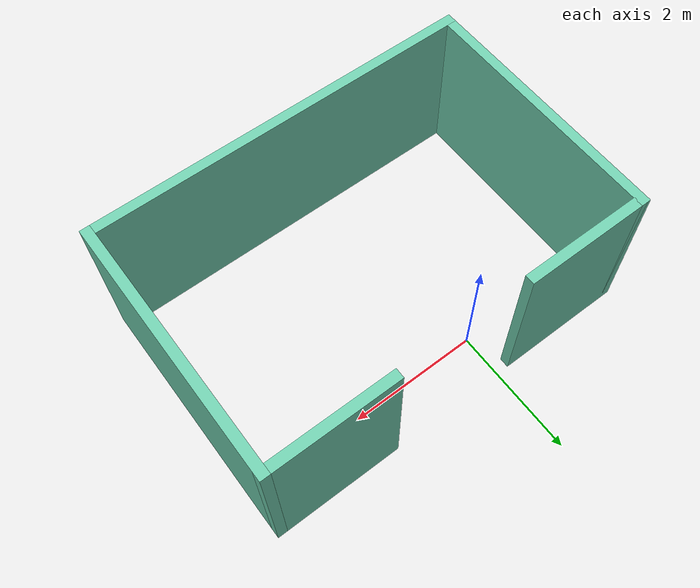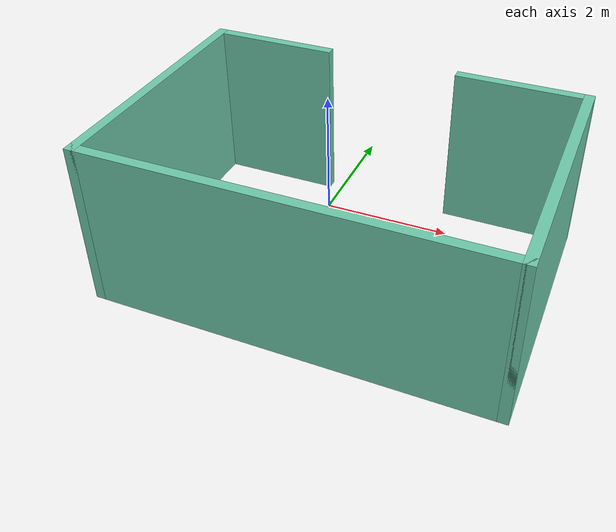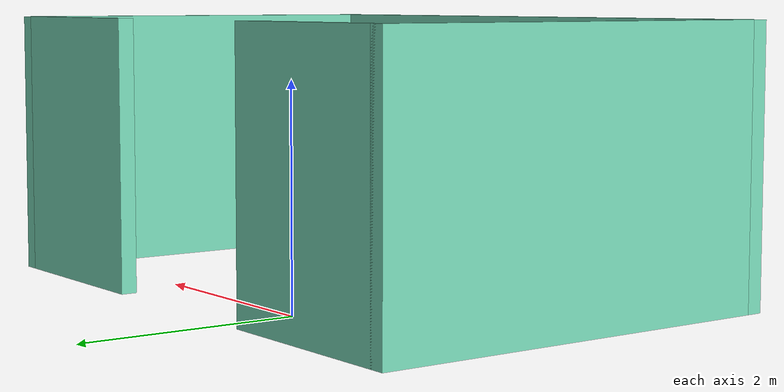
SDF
<?xml version='1.0'?>
<sdf version='1.7'>
  <model name='hospital_stroage_room'>
    <pose>0.805 -1.335 0 0 -0 0</pose>
    <link name='Wall_0'>
      <collision name='Wall_0_Collision'>
        <geometry>
          <box>
            <size>6 0.15 2.5</size>
          </box>
        </geometry>
        <pose>0 0 1.25 0 -0 0</pose>
      </collision>
      <visual name='Wall_0_Visual'>
        <pose>0 0 1.25 0 -0 0</pose>
        <geometry>
          <box>
            <size>6 0.15 2.5</size>
          </box>
        </geometry>
        <material>
          <script>
            <uri>file://media/materials/scripts/gazebo.material</uri>
            <name>Gazebo/Grey</name>
          </script>
          <ambient>0.435294 0.796078 0.67451 1</ambient>
        </material>
        <meta>
          <layer>0</layer>
        </meta>
      </visual>
      <pose>-0 -1.925 0 0 -0 0</pose>
    </link>
    <link name='Wall_1'>
      <collision name='Wall_1_Collision'>
        <geometry>
          <box>
            <size>4 0.15 2.5</size>
          </box>
        </geometry>
        <pose>0 0 1.25 0 -0 0</pose>
      </collision>
      <visual name='Wall_1_Visual'>
        <pose>0 0 1.25 0 -0 0</pose>
        <geometry>
          <box>
            <size>4 0.15 2.5</size>
          </box>
        </geometry>
        <material>
          <script>
            <uri>file://media/materials/scripts/gazebo.material</uri>
            <name>Gazebo/Grey</name>
          </script>
          <ambient>0.435294 0.796078 0.67451 1</ambient>
        </material>
        <meta>
          <layer>0</layer>
        </meta>
      </visual>
      <pose>2.925 0 0 0 -0 1.5708</pose>
    </link>
    <link name='Wall_3'>
      <collision name='Wall_3_Collision'>
        <geometry>
          <box>
            <size>4 0.15 2.5</size>
          </box>
        </geometry>
        <pose>0 0 1.25 0 -0 0</pose>
      </collision>
      <visual name='Wall_3_Visual'>
        <pose>0 0 1.25 0 -0 0</pose>
        <geometry>
          <box>
            <size>4 0.15 2.5</size>
          </box>
        </geometry>
        <material>
          <script>
            <uri>file://media/materials/scripts/gazebo.material</uri>
            <name>Gazebo/Grey</name>
          </script>
          <ambient>0.435294 0.796078 0.67451 1</ambient>
        </material>
        <meta>
          <layer>0</layer>
        </meta>
      </visual>
      <pose>-2.925 0 0 0 -0 1.5708</pose>
    </link>
    <link name='Wall_4'>
      <collision name='Wall_4_Collision'>
        <geometry>
          <box>
            <size>2 0.15 2.5</size>
          </box>
        </geometry>
        <pose>0 0 1.25 0 -0 0</pose>
      </collision>
      <visual name='Wall_4_Visual'>
        <pose>0 0 1.25 0 -0 0</pose>
        <geometry>
          <box>
            <size>2 0.15 2.5</size>
          </box>
        </geometry>
        <material>
          <script>
            <uri>file://media/materials/scripts/gazebo.material</uri>
            <name>Gazebo/Grey</name>
          </script>
          <ambient>0.435294 0.796078 0.67451 1</ambient>
        </material>
        <meta>
          <layer>0</layer>
        </meta>
      </visual>
      <pose>-2 1.925 0 0 -0 0</pose>
    </link>
    <link name='Wall_6'>
      <collision name='Wall_6_Collision'>
        <geometry>
          <box>
            <size>2 0.15 2.5</size>
          </box>
        </geometry>
        <pose>0 0 1.25 0 -0 0</pose>
      </collision>
      <visual name='Wall_6_Visual'>
        <pose>0 0 1.25 0 -0 0</pose>
        <geometry>
          <box>
            <size>2 0.15 2.5</size>
          </box>
        </geometry>
        <material>
          <script>
            <uri>file://media/materials/scripts/gazebo.material</uri>
            <name>Gazebo/Grey</name>
          </script>
          <ambient>0.435294 0.796078 0.67451 1</ambient>
        </material>
        <meta>
          <layer>0</layer>
        </meta>
      </visual>
      <pose>2 1.925 0 0 -0 3.14159</pose>
    </link>
    <static>1</static>
  </model>
</sdf>
